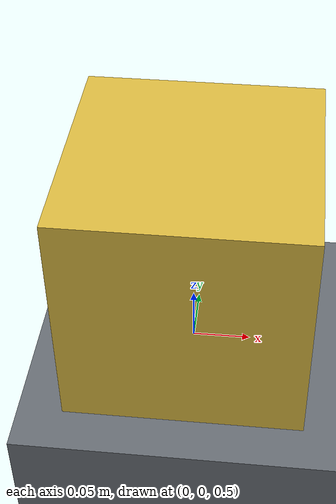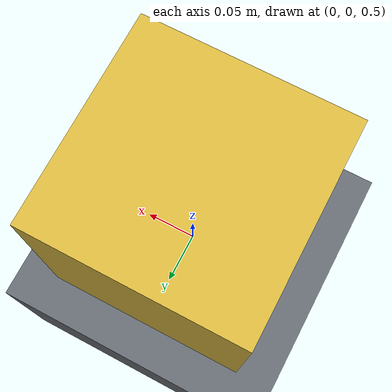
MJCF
<mujoco model="ladder0_rung1_mujoco">

  <!-- Only gravity and the timestep are set from the contract.  Everything
       else is MuJoCo's default, on purpose: this arm is the un-tuned
       reference for the solver OmniSim runs underneath. -->
  <option timestep="0.004" gravity="0 0 -9.81"/>

  <default>
    <!-- sliding / torsional / rolling.  condim defaults to 3, so only the
         first component is in force; the rest are declared for the record. -->
    <geom friction="1.0 0.005 0.0001"/>
  </default>

  <worldbody>
    <!-- Floor slab: full extents 20.0 x 20.0 x 0.2 m centred at z=0.4,
         so its top surface is at z=0.5.  Deliberately NOT at z=0. -->
    <geom name="floor" type="box" size="10.0 10.0 0.1" pos="0 0 0.4"
          rgba="0.4 0.42 0.45 1"/>

    <!-- box: 0.2 m cube, 1.0 kg, centre at z=0.6. -->
    <body name="box" pos="0 0 0.6">
      <freejoint name="box_free"/>
      <geom name="box_geom" type="box" size="0.1 0.1 0.1" mass="1.0"
            rgba="0.85 0.72 0.25 1"/>
    </body>
  </worldbody>

</mujoco>
